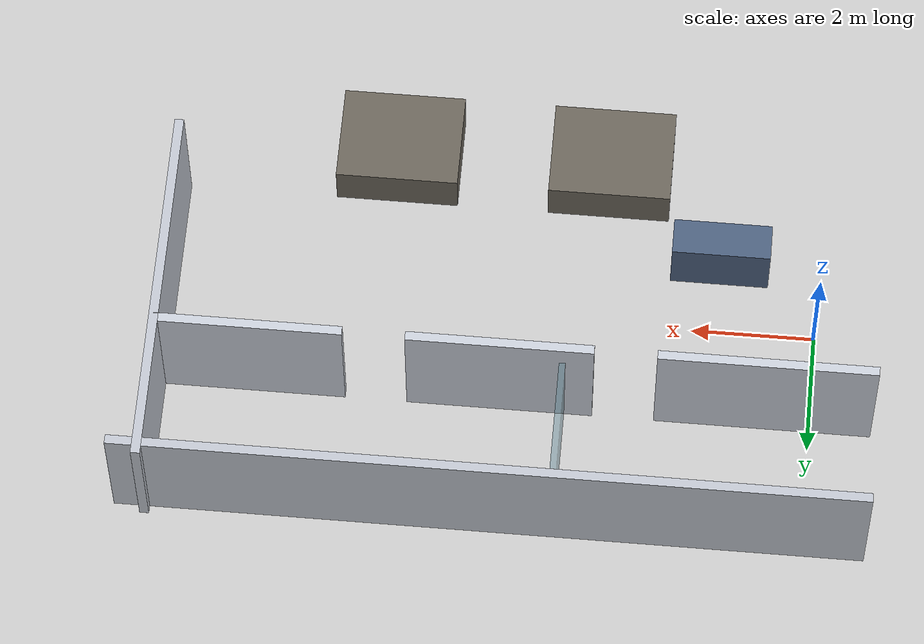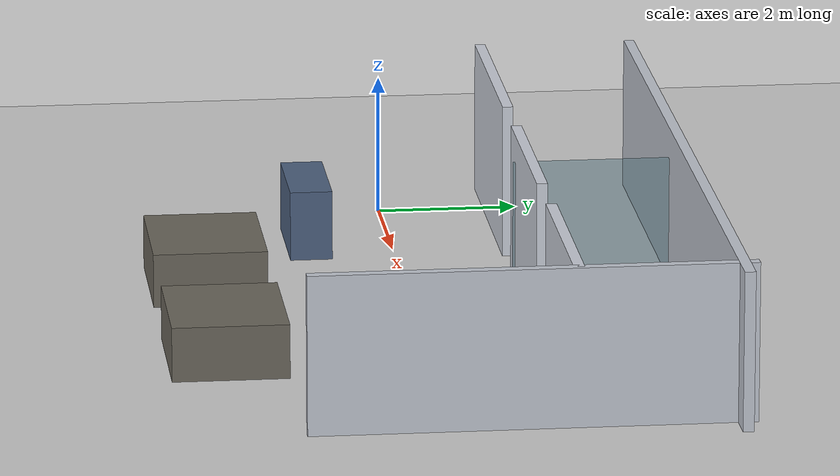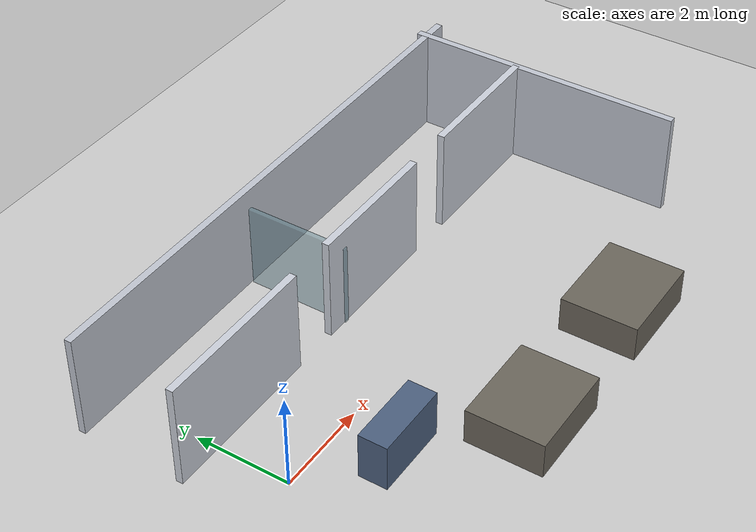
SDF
<?xml version="1.0"?>
<sdf version="1.6">
  <world name="office_world">
    <include><uri>model://sun</uri></include>
    <include><uri>model://ground_plane</uri></include>
    <light name="fill" type="directional"><pose>4 0 9 0 0 0</pose>
      <diffuse>0.6 0.6 0.6 1</diffuse><specular>0.1 0.1 0.1 1</specular>
      <direction>-0.2 -0.1 -1.0</direction><cast_shadows>false</cast_shadows></light>
    <physics type="ode"><max_step_size>0.005</max_step_size>
      <real_time_factor>1.0</real_time_factor><real_time_update_rate>200</real_time_update_rate></physics>
    <plugin name="gazebo_ros_state" filename="libgazebo_ros_state.so">
      <ros><namespace>/gazebo</namespace></ros><update_rate>20.0</update_rate></plugin>

    <!-- Meeting-room wall to the north (door gaps at x 2.5-3.5 and 6.5-7.5) -->
    <model name="mr_w1"><static>true</static><link name="l">
      <collision name="c"><pose>0.75 1.6 1.1 0 0 0</pose><geometry><box><size>3.5 0.15 2.2</size></box></geometry></collision>
      <visual name="v"><pose>0.75 1.6 1.1 0 0 0</pose><geometry><box><size>3.5 0.15 2.2</size></box></geometry>
        <material><ambient>0.80 0.82 0.86 1</ambient><diffuse>0.80 0.82 0.86 1</diffuse></material></visual></link></model>
    <model name="mr_w2"><static>true</static><link name="l">
      <collision name="c"><pose>5.0 1.6 1.1 0 0 0</pose><geometry><box><size>3.0 0.15 2.2</size></box></geometry></collision>
      <visual name="v"><pose>5.0 1.6 1.1 0 0 0</pose><geometry><box><size>3.0 0.15 2.2</size></box></geometry>
        <material><ambient>0.80 0.82 0.86 1</ambient><diffuse>0.80 0.82 0.86 1</diffuse></material></visual></link></model>
    <model name="mr_w3"><static>true</static><link name="l">
      <collision name="c"><pose>9.0 1.6 1.1 0 0 0</pose><geometry><box><size>3.0 0.15 2.2</size></box></geometry></collision>
      <visual name="v"><pose>9.0 1.6 1.1 0 0 0</pose><geometry><box><size>3.0 0.15 2.2</size></box></geometry>
        <material><ambient>0.80 0.82 0.86 1</ambient><diffuse>0.80 0.82 0.86 1</diffuse></material></visual></link></model>
    <model name="mr_back"><static>true</static><link name="l">
      <collision name="c"><pose>5.0 3.8 1.1 0 0 0</pose><geometry><box><size>12.0 0.15 2.2</size></box></geometry></collision>
      <visual name="v"><pose>5.0 3.8 1.1 0 0 0</pose><geometry><box><size>12.0 0.15 2.2</size></box></geometry>
        <material><ambient>0.76 0.78 0.82 1</ambient><diffuse>0.76 0.78 0.82 1</diffuse></material></visual></link></model>
    <model name="glass_partition"><static>true</static><link name="l">
      <collision name="c"><pose>4.0 2.6 0.9 0 0 0</pose><geometry><box><size>0.1 2.2 1.8</size></box></geometry></collision>
      <visual name="v"><pose>4.0 2.6 0.9 0 0 0</pose><geometry><box><size>0.1 2.2 1.8</size></box></geometry>
        <material><ambient>0.4 0.55 0.6 0.5</ambient><diffuse>0.4 0.55 0.6 0.5</diffuse></material></visual></link></model>

    <!-- Reception desk near the entrance (edge of the corridor) -->
    <model name="reception"><static>true</static><link name="l">
      <collision name="c"><pose>1.6 -1.2 0.5 0 0 0</pose><geometry><box><size>1.6 0.6 1.0</size></box></geometry></collision>
      <visual name="v"><pose>1.6 -1.2 0.5 0 0 0</pose><geometry><box><size>1.6 0.6 1.0</size></box></geometry>
        <material><ambient>0.30 0.38 0.5 1</ambient><diffuse>0.30 0.38 0.5 1</diffuse></material></visual></link></model>

    <!-- Open-plan desk clusters to the south (workspace) -->
    <model name="desks_1"><static>true</static><link name="l">
      <collision name="c"><pose>3.5 -2.8 0.38 0 0 0</pose><geometry><box><size>2.0 1.6 0.76</size></box></geometry></collision>
      <visual name="v"><pose>3.5 -2.8 0.38 0 0 0</pose><geometry><box><size>2.0 1.6 0.76</size></box></geometry>
        <material><ambient>0.42 0.40 0.36 1</ambient><diffuse>0.42 0.40 0.36 1</diffuse></material></visual></link></model>
    <model name="desks_2"><static>true</static><link name="l">
      <collision name="c"><pose>7.0 -2.8 0.38 0 0 0</pose><geometry><box><size>2.0 1.6 0.76</size></box></geometry></collision>
      <visual name="v"><pose>7.0 -2.8 0.38 0 0 0</pose><geometry><box><size>2.0 1.6 0.76</size></box></geometry>
        <material><ambient>0.42 0.40 0.36 1</ambient><diffuse>0.42 0.40 0.36 1</diffuse></material></visual></link></model>
    <model name="end_e"><static>true</static><link name="l">
      <collision name="c"><pose>10.5 1.0 1.1 0 0 0</pose><geometry><box><size>0.15 6.0 2.2</size></box></geometry></collision>
      <visual name="v"><pose>10.5 1.0 1.1 0 0 0</pose><geometry><box><size>0.15 6.0 2.2</size></box></geometry>
        <material><ambient>0.76 0.78 0.82 1</ambient><diffuse>0.76 0.78 0.82 1</diffuse></material></visual></link></model>
  </world>
</sdf>
